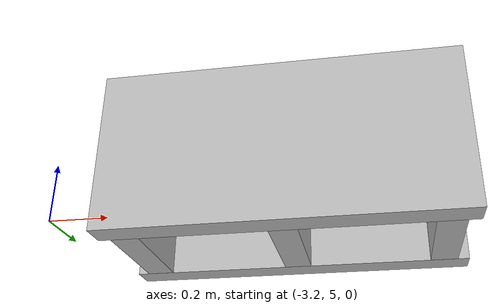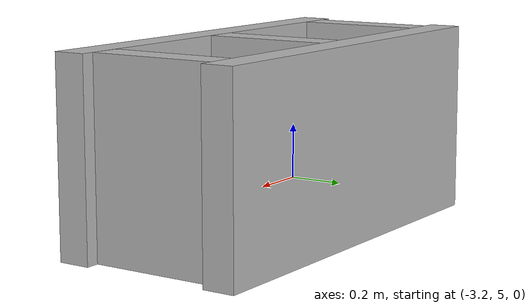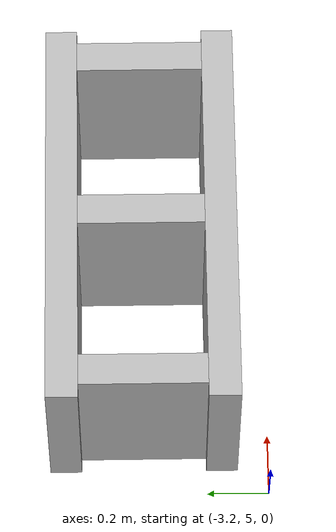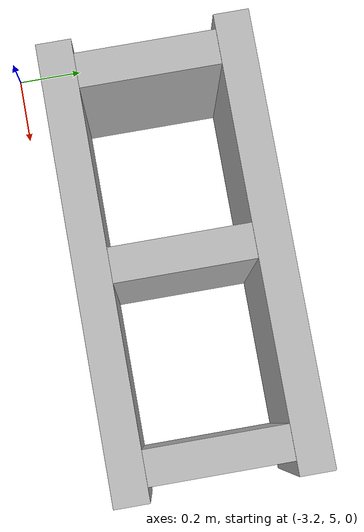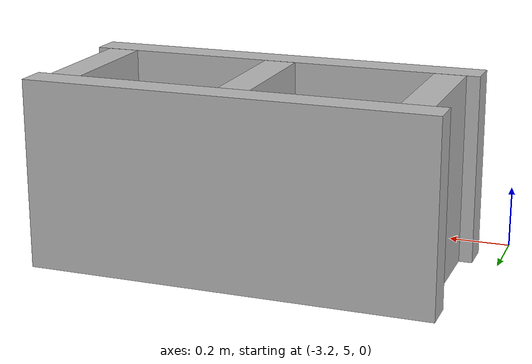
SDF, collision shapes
<?xml version='1.0'?>
<sdf version='1.7'>
  <model name='block'>
    <model name='mossy_cinder_block'>
      <link name='link'>
        <inertial>
          <pose>0 0 0.1016 0 -0 0</pose>
          <mass>5</mass>
          <inertia>
            <ixx>0.028705</ixx>
            <ixy>0</ixy>
            <iyy>0.073708</iyy>
            <ixz>0</ixz>
            <iyz>0</iyz>
            <izz>0.06908</izz>
          </inertia>
        </inertial>
        <visual name='visual'>
          <geometry>
            <mesh>
              <scale>1.1 1.1 1.1</scale>
              <uri>https://fuel.ignitionrobotics.org/1.0/yuhang/models/mossy_cinder_block/1/files/meshes/mossy_cinder_block.dae</uri>
            </mesh>
          </geometry>
        </visual>
        <collision name='left'>
          <pose>0 -0.25395 0.3048 0 -0 0</pose>
          <geometry>
            <box>
              <size>1.30485 0.1017 0.6096</size>
            </box>
          </geometry>
          <surface>
            <contact>
              <ode>
                <max_vel>0.1</max_vel>
                <min_depth>0.001</min_depth>
              </ode>
            </contact>
            <friction>
              <ode>
                <mu>1</mu>
                <mu2>1</mu2>
              </ode>
            </friction>
          </surface>
        </collision>
        <collision name='right'>
          <pose>0 0.25395 0.3048 0 -0 0</pose>
          <geometry>
            <box>
              <size>1.30485 0.1017 0.6096</size>
            </box>
          </geometry>
          <surface>
            <contact>
              <ode>
                <max_vel>0.1</max_vel>
                <min_depth>0.001</min_depth>
              </ode>
            </contact>
            <friction>
              <ode>
                <mu>1</mu>
                <mu2>1</mu2>
              </ode>
            </friction>
          </surface>
        </collision>
        <collision name='front'>
          <pose>0.55875 0 0.3048 0 -0 0</pose>
          <geometry>
            <box>
              <size>0.1017 0.4062 0.609</size>
            </box>
          </geometry>
          <surface>
            <contact>
              <ode>
                <max_vel>0.1</max_vel>
                <min_depth>0.001</min_depth>
              </ode>
            </contact>
            <friction>
              <ode>
                <mu>1</mu>
                <mu2>1</mu2>
              </ode>
            </friction>
          </surface>
        </collision>
        <collision name='middle'>
          <pose>0 0 0.3048 0 -0 0</pose>
          <geometry>
            <box>
              <size>0.1017 0.4062 0.609</size>
            </box>
          </geometry>
          <surface>
            <contact>
              <ode>
                <max_vel>0.1</max_vel>
                <min_depth>0.001</min_depth>
              </ode>
            </contact>
            <friction>
              <ode>
                <mu>1</mu>
                <mu2>1</mu2>
              </ode>
            </friction>
          </surface>
        </collision>
        <collision name='back'>
          <pose>-0.55875 0 0.3048 0 -0 0</pose>
          <geometry>
            <box>
              <size>0.1017 0.4062 0.609</size>
            </box>
          </geometry>
          <surface>
            <contact>
              <ode>
                <max_vel>0.1</max_vel>
                <min_depth>0.001</min_depth>
              </ode>
            </contact>
            <friction>
              <ode>
                <mu>1</mu>
                <mu2>1</mu2>
              </ode>
            </friction>
          </surface>
        </collision>
      </link>
      <pose>-2.46537 5.40454 0 0 -0 0</pose>
    </model>
    <static>0</static>
    <allow_auto_disable>1</allow_auto_disable>
  </model>
</sdf>
